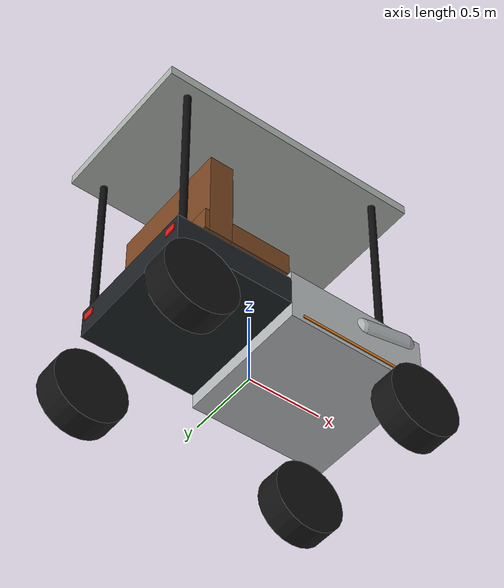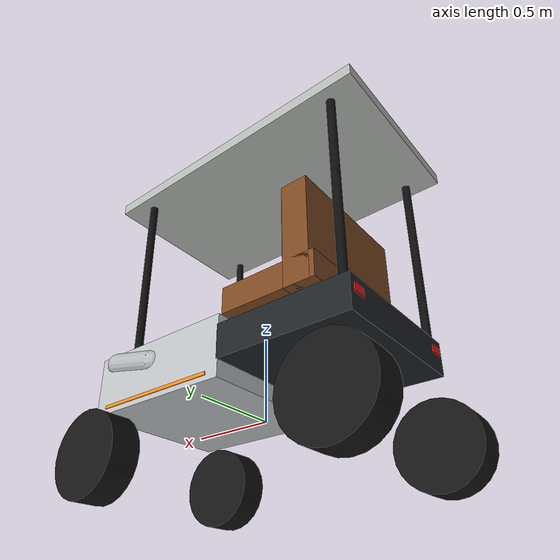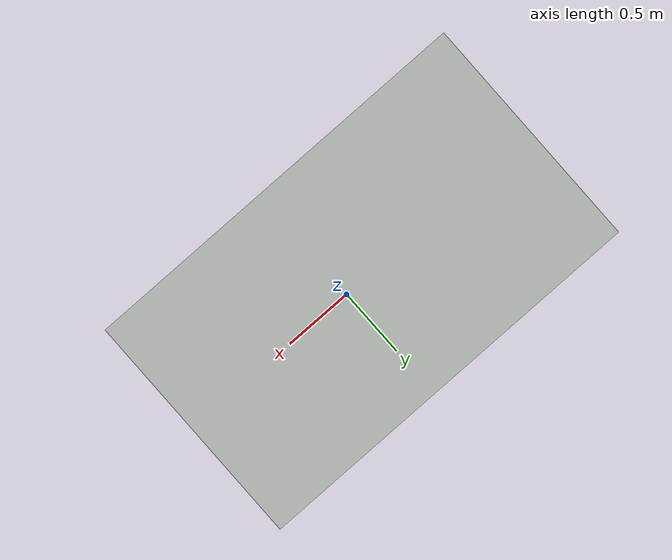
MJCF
<mujoco model="generic_ackermann_golf_cart">
  <compiler angle="radian" autolimits="true"/>

  <!--
    Human-authored structural and visual model.
    Physical collision geoms, actuators, contact excludes, and the world are
    injected from the sibling YAML files by tools/ackermann/forge.py.
  -->
  <worldbody>
    <body name="vehicle">
      <geom name="body_front_visual" type="box" pos="0.42 0 0.28"
            size="0.48 0.47 0.18" rgba="0.75 0.77 0.78 1"
            contype="0" conaffinity="0" density="0" group="1"/>
      <geom name="body_floor_visual" type="box" pos="-0.45 0 0.30"
            size="0.40 0.47 0.10" rgba="0.12 0.14 0.15 1"
            contype="0" conaffinity="0" density="0" group="1"/>
      <geom name="seat_visual" type="box" pos="-0.34 0 0.56"
            size="0.30 0.43 0.08" rgba="0.50 0.29 0.14 1"
            contype="0" conaffinity="0" density="0" group="1"/>
      <geom name="seat_back_visual" type="box" pos="-0.53 0 0.80"
            size="0.08 0.43 0.32" rgba="0.50 0.29 0.14 1"
            contype="0" conaffinity="0" density="0" group="1"/>
      <geom name="seat_pad_visual" type="box" pos="-0.45 0 0.88"
            size="0.04 0.38 0.22" rgba="0.72 0.82 0.86 0.55"
            contype="0" conaffinity="0" density="0" group="1"/>
      <!-- Lights (they glow; config/lights.yaml): head lamps, tail lamps, amber side LEDs -->
      <geom name="head_lamp_left_visual" type="box" pos="0.905 0.32 0.36" size="0.006 0.055 0.03"
            rgba="1 0.97 0.86 1" contype="0" conaffinity="0" density="0" group="1"/>
      <geom name="head_lamp_right_visual" type="box" pos="0.905 -0.32 0.36" size="0.006 0.055 0.03"
            rgba="1 0.97 0.86 1" contype="0" conaffinity="0" density="0" group="1"/>
      <geom name="tail_lamp_left_visual" type="box" pos="-0.853 0.40 0.33" size="0.004 0.04 0.025"
            rgba="0.9 0.1 0.08 1" contype="0" conaffinity="0" density="0" group="1"/>
      <geom name="tail_lamp_right_visual" type="box" pos="-0.853 -0.40 0.33" size="0.004 0.04 0.025"
            rgba="0.9 0.1 0.08 1" contype="0" conaffinity="0" density="0" group="1"/>
      <geom name="side_led_left_visual" type="box" pos="0.42 0.473 0.14" size="0.40 0.003 0.01"
            rgba="1 0.55 0.1 1" contype="0" conaffinity="0" density="0" group="1"/>
      <geom name="side_led_right_visual" type="box" pos="0.42 -0.473 0.14" size="0.40 0.003 0.01"
            rgba="1 0.55 0.1 1" contype="0" conaffinity="0" density="0" group="1"/>
      <geom name="front_bumper_left_visual" type="capsule"
            fromto="0.48 -0.43 0.35 0.80 -0.43 0.42" size="0.07"
            rgba="0.72 0.74 0.75 1" contype="0" conaffinity="0"
            density="0" group="1"/>
      <geom name="front_bumper_right_visual" type="capsule"
            fromto="0.48 0.43 0.35 0.80 0.43 0.42" size="0.07"
            rgba="0.72 0.74 0.75 1" contype="0" conaffinity="0"
            density="0" group="1"/>

      <geom name="roof_post_rear_left_visual" type="capsule"
            fromto="-0.80 -0.44 0.35 -0.80 -0.44 1.55" size="0.025"
            rgba="0.05 0.05 0.05 1" contype="0" conaffinity="0"
            density="0" group="1"/>
      <geom name="roof_post_rear_right_visual" type="capsule"
            fromto="-0.80 0.44 0.35 -0.80 0.44 1.55" size="0.025"
            rgba="0.05 0.05 0.05 1" contype="0" conaffinity="0"
            density="0" group="1"/>
      <geom name="roof_post_front_left_visual" type="capsule"
            fromto="0.62 -0.44 0.35 0.62 -0.44 1.55" size="0.025"
            rgba="0.05 0.05 0.05 1" contype="0" conaffinity="0"
            density="0" group="1"/>
      <geom name="roof_post_front_right_visual" type="capsule"
            fromto="0.62 0.44 0.35 0.62 0.44 1.55" size="0.025"
            rgba="0.05 0.05 0.05 1" contype="0" conaffinity="0"
            density="0" group="1"/>
      <geom name="roof_visual" type="box" pos="-0.08 0 1.56"
            size="0.90 0.53 0.035" rgba="0.72 0.74 0.72 1"
            contype="0" conaffinity="0" density="0" group="1"/>

      <body name="front_left_steer" pos="0.775 0.52 -0.17">
        <inertial pos="0 0 0" mass="0.3" diaginertia="0.001 0.001 0.001"/>
        <joint name="front_left_steer_joint" type="hinge" axis="0 0 1"
               range="-0.90 0.90" damping="0.05" armature="0.01"/>
        <body name="front_left_wheel">
          <joint name="front_left_wheel_joint" type="hinge" axis="0 1 0"
                 damping="0.05" armature="0.01"/>
          <geom name="front_left_tire_visual" type="cylinder"
                size="0.25 0.09" euler="1.57079632679 0 0"
                rgba="0.08 0.08 0.08 1" contype="0" conaffinity="0"
                density="0" group="1"/>
        </body>
      </body>

      <body name="front_right_steer" pos="0.775 -0.52 -0.17">
        <inertial pos="0 0 0" mass="0.3" diaginertia="0.001 0.001 0.001"/>
        <joint name="front_right_steer_joint" type="hinge" axis="0 0 1"
               range="-0.90 0.90" damping="0.05" armature="0.01"/>
        <body name="front_right_wheel">
          <joint name="front_right_wheel_joint" type="hinge" axis="0 1 0"
                 damping="0.05" armature="0.01"/>
          <geom name="front_right_tire_visual" type="cylinder"
                size="0.25 0.09" euler="1.57079632679 0 0"
                rgba="0.08 0.08 0.08 1" contype="0" conaffinity="0"
                density="0" group="1"/>
        </body>
      </body>

      <body name="rear_left_wheel" pos="-0.775 0.52 -0.17">
        <joint name="rear_left_wheel_joint" type="hinge" axis="0 1 0"
               damping="0.05" armature="0.01"/>
        <geom name="rear_left_tire_visual" type="cylinder"
              size="0.25 0.09" euler="1.57079632679 0 0"
              rgba="0.08 0.08 0.08 1" contype="0" conaffinity="0"
              density="0" group="1"/>
      </body>

      <body name="rear_right_wheel" pos="-0.775 -0.52 -0.17">
        <joint name="rear_right_wheel_joint" type="hinge" axis="0 1 0"
               damping="0.05" armature="0.01"/>
        <geom name="rear_right_tire_visual" type="cylinder"
              size="0.25 0.09" euler="1.57079632679 0 0"
              rgba="0.08 0.08 0.08 1" contype="0" conaffinity="0"
              density="0" group="1"/>
      </body>
    </body>
  </worldbody>
</mujoco>
